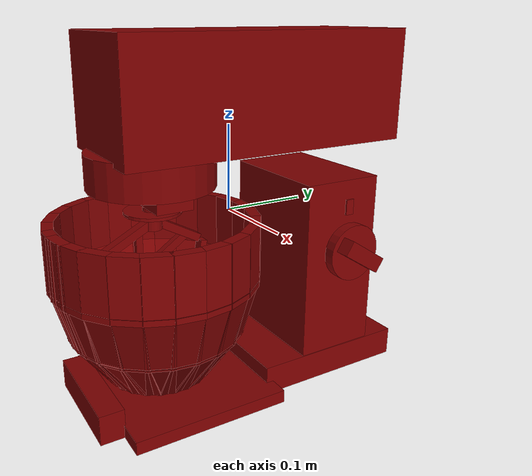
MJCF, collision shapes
<?xml version='1.0' encoding='UTF-8'?>
<mujoco model="model">
  <compiler angle="radian"/>
  <asset>
    <mesh file="visuals/Blender001.obj" name="Blender001_vis"/>
    <mesh file="visuals/Body001.obj" name="Body001_vis"/>
    <mesh file="visuals/Button001.obj" name="Button001_vis"/>
    <mesh file="visuals/Container001.obj" name="Container001_vis"/>
    <mesh file="visuals/Knob001.obj" name="Knob001_vis"/>
    <mesh file="visuals/Lid001.obj" name="Lid001_vis"/>
    <texture file="visuals/T_BC001.png" name="Body001_material" type="2d"/>
    <material name="Body001_material" rgba="1 1 1 1.0" texture="Body001_material" shininess="0.2512328028678894" specular="0.3103448502657381"/>
    <texture file="visuals/T_BC001.png" name="Button001_material" type="2d"/>
    <material name="Button001_material" rgba="1 1 1 1.0" texture="Button001_material" shininess="0.2512328028678894" specular="0.3103448502657381"/>
    <texture file="visuals/T_BC001.png" name="Container001_material" type="2d"/>
    <material name="Container001_material" rgba="1 1 1 1.0" texture="Container001_material" shininess="0.2512328028678894" specular="0.3103448502657381"/>
    <texture file="visuals/T_BC001.png" name="Knob001_material" type="2d"/>
    <material name="Knob001_material" rgba="1 1 1 1.0" texture="Knob001_material" shininess="0.2512328028678894" specular="0.3103448502657381"/>
    <texture file="visuals/T_BC001.png" name="Lid001_material" type="2d"/>
    <material name="Lid001_material" rgba="1 1 1 1.0" texture="Lid001_material" shininess="0.2512328028678894" specular="0.3103448502657381"/>
    <texture file="visuals/T_BC001.png" name="Blender001_material" type="2d"/>
    <material name="Blender001_material" rgba="1 1 1 1.0" texture="Blender001_material" shininess="0.2512328028678894" specular="0.3103448502657381"/>
  </asset>
  <default>
    <default class="visual">
      <geom conaffinity="0" contype="0" group="1" type="mesh"/>
    </default>
    <default class="collision">
      <geom group="0" rgba="0.5 0 0 0.5"/>
    </default>
    <default class="spawn">
      <geom group="0" rgba="1 1 1 0.5" contype="0" conaffinity="0"/>
      <site group="0" rgba="1 1 1 0.5"/>
    </default>
    <default class="region">
      <geom group="1" conaffinity="0" contype="0" rgba="0 1 0 0"/>
    </default>
  </default>
  <worldbody>
    <body>
      <body name="object">
        <geom mesh="Body001_vis" type="mesh" solimp="0.998 0.998 0.001" solref="0.001 1" density="100" friction="0.95 0.3 0.1" class="visual" material="Body001_material"/>
        <geom class="collision" type="box" pos="-0.0015134010463953018 0.11187341809272766 -0.08460196852684021" size="0.04973790794610977 0.07485727220773697 0.12052256613969803" quat="0.7071068286895752 0.0 0.0 0.7071067690849304"/>
        <geom class="collision" type="box" pos="-4.5945451887519084e-09 0.10511094331741333 -0.1957404911518097" size="0.09662679582834244 0.07478203624486923 0.017333393916487694" quat="0.7071068286895752 0.0 0.0 0.7071067690849304"/>
        <geom class="collision" type="box" pos="3.2677749395304545e-09 -0.07475799322128296 -0.2053949534893036" size="0.09226132929325104 0.0979515016078949 0.007678885478526354" quat="0.7071068286895752 0.0 0.0 0.7071067690849304"/>
        <geom class="collision" type="box" pos="7.855673445078537e-09 -0.17971685528755188 -0.1957404613494873" size="0.014186805114150047 0.06465299427509308 0.017333386465907097" quat="0.7071068286895752 0.0 0.0 0.7071067690849304"/>
        <body name="Button001">
          <joint axis="-1.0 0.0 0.0" pos="0.07972491532564163 0.11553697288036346 0.005397915840148926" limited="true" name="Button001_joint" range="0.0 0.001" type="slide" damping="1" frictionloss="1" armature=".01" stiffness="0.05"/>
          <geom mesh="Button001_vis" type="mesh" solimp="0.998 0.998 0.001" solref="0.001 1" density="100" friction="0.95 0.3 0.1" class="visual" material="Button001_material"/>
          <geom class="collision" type="box" pos="0.0796266421675682 0.11564087122678757 0.005433990620076656" size="0.005102482158690691 0.0012516024289652705 0.009104336611926556" quat="0.7071068286895752 0.0 0.0 0.7071067690849304"/>
        </body>
        <body name="Container001">
          <joint axis="0.0 0.0 1.0" pos="-7.291173442780519e-09 -0.09765620529651642 -0.10301198810338974" limited="true" name="Container001_joint" range="0.0 0.05" type="slide" damping="1" frictionloss="1" armature=".01" stiffness="0.05"/>
          <geom mesh="Container001_vis" type="mesh" solimp="0.998 0.998 0.001" solref="0.001 1" density="100" friction="0.95 0.3 0.1" class="visual" material="Container001_material"/>
          <geom class="collision" type="cylinder" pos="-0.0002636372810229659 -0.09704343229532242 -0.17977194488048553" size="0.05244426429271698 0.005382004659622908" quat="0.7071068286895752 0.0 0.0 0.7071067690849304"/>
          <geom class="collision" type="box" pos="-0.0002648494264576584 -0.20975354313850403 -0.03036089614033699" size="0.0062544080428779125 0.016279293224215508 0.035840801894664764" quat="0.7071068286895752 0.0 0.0 0.7071067690849304"/>
          <geom class="collision" type="box" pos="-0.00026362139033153653 -0.20032256841659546 -0.09177970141172409" size="0.006193332374095917 0.016120601445436478 0.03584080561995506" quat="0.0975811630487442 -0.7003412842750549 -0.7003412842750549 -0.09758107364177704"/>
          <geom class="collision" type="box" pos="-0.0002636302961036563 -0.17221559584140778 -0.1491832137107849" size="0.006193332374095917 0.016120603308081627 0.035840798169374466" quat="0.21898114681243896 -0.6723445653915405 -0.6723446846008301 -0.21898102760314941"/>
          <geom class="collision" type="box" pos="-0.028881153091788292 -0.20605501532554626 -0.03036089986562729" size="0.006254295818507671 0.01627928949892521 0.03584079444408417" quat="5.978750294843849e-08 0.7919095754623413 0.6106383800506592 4.6101927608788174e-08"/>
          <geom class="collision" type="box" pos="-0.02652144990861416 -0.19692887365818024 -0.0917796939611435" size="0.006193328648805618 0.01612059772014618 0.035840801894664764" quat="0.08426856249570847 -0.7843326330184937 -0.6047959327697754 -0.10928399115800858"/>
          <geom class="collision" type="box" pos="-0.019375531002879143 -0.169745534658432 -0.1491832286119461" size="0.006193332374095917 0.016120603308081627 0.03584080561995506" quat="0.18910624086856842 -0.7529783844947815 -0.5806187391281128 -0.24524326622486115"/>
          <geom class="collision" type="box" pos="-0.056338753551244736 -0.19479139149188995 -0.03036087565124035" size="0.006254302803426981 0.016279293224215508 0.03584080934524536" quat="6.534361318699666e-08 0.8655023574829102 0.5009048581123352 3.781725510521028e-08"/>
          <geom class="collision" type="box" pos="-0.051716096699237823 -0.18659353256225586 -0.09177970886230469" size="0.006193336099386215 0.016120601445436478 0.03584081679582596" quat="0.069125235080719 -0.8572213649749756 -0.496112197637558 -0.11943983286619186"/>
          <geom class="collision" type="box" pos="-0.037713564932346344 -0.16222289204597473 -0.1491832137107849" size="0.006193332374095917 0.016120601445436478 0.03584080561995506" quat="0.1551232486963272 -0.8229533433914185 -0.47627967596054077 -0.2680339813232422"/>
          <geom class="collision" type="box" pos="-0.08001255989074707 -0.176627516746521 -0.03036089986562729" size="0.0062542990781366825 0.016279293224215508 0.035840801894664764" quat="6.977980859801391e-08 0.9242616295814514 0.3817597031593323 2.882205585308384e-08"/>
          <geom class="collision" type="box" pos="-0.07343883067369461 -0.1699267029762268 -0.0917796939611435" size="0.006193336099386215 0.016120605170726776 0.03584080561995506" quat="0.052683163434267044 -0.9154183864593506 -0.3781071603298187 -0.12754866480827332"/>
          <geom class="collision" type="box" pos="-0.05352454259991646 -0.15009182691574097 -0.1491832137107849" size="0.006193328648805618 0.016120603308081627 0.03584080561995506" quat="0.11822569370269775 -0.8788238763809204 -0.36299195885658264 -0.2862308621406555"/>
          <geom class="collision" type="box" pos="-0.0976824164390564 -0.15357688069343567 -0.03036087565124035" size="0.006254303734749556 0.016279296949505806 0.03584080934524536" quat="7.291522763352987e-08 0.9657914638519287 0.2593200206756592 1.957811690544986e-08"/>
          <geom class="collision" type="box" pos="-0.08965232223272324 -0.14877580106258392 -0.0917796939611435" size="0.006193336099386215 0.016120605170726776 0.035840801894664764" quat="0.03578639775514603 -0.9565508961677551 -0.25683894753456116 -0.13327977061271667"/>
          <geom class="collision" type="box" pos="-0.06532563269138336 -0.1346970796585083 -0.1491832435131073" size="0.006193332374095917 0.016120607033371925 0.03584080561995506" quat="-0.08030775934457779 0.918312132358551 0.246571347117424 0.2990921437740326"/>
          <geom class="collision" type="box" pos="-0.10919365286827087 -0.12554003298282623 -0.030360877513885498" size="0.0062542990781366825 0.01627929136157036 0.03584080934524536" quat="7.488726083693109e-08 0.9919118285179138 0.12692886590957642 9.582859838985769e-09"/>
          <geom class="collision" type="box" pos="-0.10021483153104782 -0.12304962426424026 -0.0917796865105629" size="0.006193328648805618 0.01612059585750103 0.03584079071879387" quat="0.01751633919775486 -0.982421338558197 -0.12571442127227783 -0.13688448071479797"/>
          <geom class="collision" type="box" pos="-0.07301361113786697 -0.11597216129302979 -0.1491832286119461" size="0.006193332374095917 0.01612059585750103 0.035840798169374466" quat="-0.039308059960603714 0.9431483149528503 0.12068898230791092 0.3071812391281128"/>
          <geom class="collision" type="box" pos="-0.11281777173280716 -0.09642375260591507 -0.03036087192595005" size="0.0163219403475523 0.00636614253744483 0.03584136813879013" quat="0.7071068286895752 0.0 0.0 0.7071067690849304"/>
          <geom class="collision" type="box" pos="-0.10354029387235641 -0.09633303433656693 -0.0917796939611435" size="0.006193332374095917 0.016120601445436478 0.03584081679582596" quat="-0.0004745778569485992 -0.9904263019561768 0.00340657657943666 -0.13799984753131866"/>
          <geom class="collision" type="box" pos="-0.07543407380580902 -0.09652635455131531 -0.1491832733154297" size="0.006193332374095917 0.016120603308081627 0.03584080561995506" quat="-0.0010650918120518327 -0.950833261013031 0.0032703832257539034 -0.3096841275691986"/>
          <geom class="collision" type="box" pos="-0.1084333211183548 -0.06607984751462936 -0.030360903590917587" size="0.006254306994378567 0.01627928391098976 0.03584079444408417" quat="6.421896614483558e-08 -0.9902077317237854 0.1396017223596573 -8.529823958269844e-08"/>
          <geom class="collision" type="box" pos="-0.09951724112033844 -0.06848996132612228 -0.0917796939611435" size="0.006193332374095917 0.016120607033371925 0.03584081679582596" quat="-0.019265055656433105 -0.9807335734367371 0.13826602697372437 -0.13664932548999786"/>
          <geom class="collision" type="box" pos="-0.07250580936670303 -0.07626064121723175 -0.1491832286119461" size="0.006193332374095917 0.016120603308081627 0.03584080934524536" quat="-0.04323263838887215 -0.9415280222892761 0.13273873925209045 -0.30665352940559387"/>
          <geom class="collision" type="box" pos="-0.09623046219348907 -0.038381680846214294 -0.030360892415046692" size="0.0062542990781366825 0.01627928763628006 0.03584079444408417" quat="9.315822069311253e-08 -0.9624464511871338 0.27147161960601807 5.216714882294582e-08"/>
          <geom class="collision" type="box" pos="-0.0883200615644455 -0.0430745966732502 -0.09177970886230469" size="0.006193332374095917 0.016120605170726776 0.03584079444408417" quat="-0.037463173270225525 -0.9532379508018494 0.2688741087913513 -0.13281826674938202"/>
          <geom class="collision" type="box" pos="-0.06435592472553253 -0.05776195600628853 -0.1491832435131073" size="0.006193336099386215 0.01612059958279133 0.03584080561995506" quat="-0.08407089859247208 -0.9151315093040466 0.25812575221061707 -0.2980562448501587"/>
          <geom class="collision" type="box" pos="-0.07724934816360474 -0.015087449923157692 -0.030360879376530647" size="0.0062542990781366825 0.016279295086860657 0.03584080561995506" quat="3.926532698983465e-08 -0.9175969958305359 0.39751195907592773 -9.928796629310455e-08"/>
          <geom class="collision" type="box" pos="-0.07090330868959427 -0.021700184792280197 -0.0917796939611435" size="0.00619333703070879 0.01612059772014618 0.03584079444408417" quat="0.05485696718096733 0.9088175892829895 -0.3937085270881653 0.12662896513938904"/>
          <geom class="collision" type="box" pos="-0.051679059863090515 -0.04220451042056084 -0.1491832286119461" size="0.006193332374095917 0.016120605170726776 0.03584080934524536" quat="-0.12310383468866348 -0.8724868893623352 0.37796980142593384 -0.28416699171066284"/>
          <geom class="collision" type="box" pos="-0.0525081492960453 0.002498492132872343 -0.0303608700633049" size="0.006254307460039854 0.016279296949505806 0.03584081679582596" quat="1.0367579506009861e-07 -0.8556153774261475 0.5176121592521667 2.5518534840784923e-08"/>
          <geom class="collision" type="box" pos="-0.048201218247413635 -0.005563614424318075 -0.0917796939611435" size="0.006193338893353939 0.016120605170726776 0.03584080934524536" quat="0.07143081724643707 0.8474289774894714 -0.5126597285270691 0.11807534098625183"/>
          <geom class="collision" type="box" pos="-0.03515521436929703 -0.030459435656666756 -0.1491832435131073" size="0.006193332374095917 0.016120601445436478 0.035840801894664764" quat="0.16029717028141022 0.8135523200035095 -0.49216586351394653 0.2649720311164856"/>
          <geom class="collision" type="box" pos="-0.023989543318748474 0.01282880362123251 -0.0303608700633049" size="0.006254300009459257 0.016279296949505806 0.03584082052111626" quat="1.1316271475436679e-08 -0.7780683040618896 0.6281797289848328 -1.0616876977564971e-07"/>
          <geom class="collision" type="box" pos="-0.022032996639609337 0.0039152768440544605 -0.0917796865105629" size="0.006193331442773342 0.01612059958279133 0.03584081307053566" quat="0.0866890698671341 0.7706241607666016 -0.622169017791748 0.10737390071153641"/>
          <geom class="collision" type="box" pos="-0.016108576208353043 -0.023560140281915665 -0.1491832435131073" size="0.006193336099386215 0.016120607033371925 0.03584081679582596" quat="0.19453826546669006 0.7398179173469543 -0.5972973108291626 0.24095690250396729"/>
          <geom class="collision" type="box" pos="0.0065854075364768505 0.015148879028856754 -0.030360884964466095" size="0.006254296284168959 0.01627929136157036 0.03584080561995506" quat="8.493894654293399e-08 0.6852511763572693 -0.7283068299293518 1.989968723137281e-08"/>
          <geom class="collision" type="box" pos="0.0060220747254788876 0.006044226232916117 -0.09177970141172409" size="0.006193335168063641 0.016120610758662224 0.03584080934524536" quat="0.10050668567419052 0.6786948442459106 -0.7213384509086609 0.09456508606672287"/>
          <geom class="collision" type="box" pos="0.0043114423751831055 -0.022010639309883118 -0.1491832435131073" size="0.006193339824676514 0.01612059958279133 0.03584080561995506" quat="0.22554633021354675 0.6515636444091797 -0.6925022602081299 0.21221283078193665"/>
          <geom class="collision" type="box" pos="0.03708355128765106 0.008980346843600273 -0.030360866338014603" size="0.006254300009459257 0.016279295086860657 0.03584081679582596" quat="8.687420205433227e-08 0.578004002571106 -0.8160339593887329 7.968111503942055e-09"/>
          <geom class="collision" type="box" pos="0.03400667756795883 0.00038406639941968024 -0.0917796939611435" size="0.006193336099386215 0.016120601445436478 0.03584080934524536" quat="0.11261319369077682 0.5724737048149109 -0.8082262277603149 0.0797649621963501"/>
          <geom class="collision" type="box" pos="0.02468016743659973 -0.02613040618598461 -0.1491832137107849" size="0.006193338893353939 0.01612059958279133 0.03584079444408417" quat="0.2527141273021698 0.549588680267334 -0.7759168744087219 0.1789996176958084"/>
          <geom class="collision" type="box" pos="0.06416179984807968 -0.004905277397483587 -0.030360877513885498" size="0.006254295352846384 0.01627929136157036 0.03584080561995506" quat="8.715392851854631e-08 0.46238550543785095 -0.8866789937019348 -3.8488563447458546e-09"/>
          <geom class="collision" type="box" pos="0.058853231370449066 -0.012357153929769993 -0.0917796939611435" size="0.006193332374095917 0.016120607033371925 0.03584081307053566" quat="0.12236227095127106 0.4579613208770752 -0.8781954646110535 0.06380952894687653"/>
          <geom class="collision" type="box" pos="0.04276483878493309 -0.03540413826704025 -0.1491832137107849" size="0.006193332374095917 0.016120601445436478 0.03584079071879387" quat="0.27459195256233215 0.4396542012691498 -0.8430888652801514 0.14319434762001038"/>
          <geom class="collision" type="box" pos="0.08636056631803513 -0.025331586599349976 -0.030360879376530647" size="0.006254298612475395 0.016279296949505806 0.03584080561995506" quat="8.585204369637722e-08 0.3393934369087219 -0.9406445026397705 -1.5493384353248985e-08"/>
          <geom class="collision" type="box" pos="0.0792224258184433 -0.031100019812583923 -0.0917796939611435" size="0.006193335168063641 0.016120605170726776 0.035840798169374466" quat="0.1298094242811203 0.3361463248729706 -0.9316444993019104 0.04683653637766838"/>
          <geom class="collision" type="box" pos="0.05759066715836525 -0.049046263098716736 -0.1491832435131073" size="0.00619332492351532 0.016120603308081627 0.03584081307053566" quat="0.2913043797016144 0.3227080702781677 -0.8944015502929688 0.10510528832674026"/>
          <geom class="collision" type="box" pos="0.102748803794384 -0.05184471979737282 -0.03036087192595005" size="0.006254302803426981 0.016279293224215508 0.03584080561995506" quat="6.488117065828192e-08 -0.20588092505931854 0.9785770773887634 5.831854821281013e-08"/>
          <geom class="collision" type="box" pos="0.09426003694534302 -0.05542804300785065 -0.09177970886230469" size="0.006193332839757204 0.016120601445436478 0.03584079444408417" quat="0.13504426181316376 0.2039114385843277 -0.9692140817642212 0.028411807492375374"/>
          <geom class="collision" type="box" pos="0.06853587925434113 -0.06675352901220322 -0.1491832137107849" size="0.006193336099386215 0.01612059958279133 0.03584079444408417" quat="0.30305150151252747 0.19575956463813782 -0.9304691553115845 0.0637584701180458"/>
          <geom class="collision" type="box" pos="0.11099646985530853 -0.0801786407828331 -0.030360901728272438" size="0.0062542990781366825 0.01627929136157036 0.03584079444408417" quat="7.85948728321273e-08 0.07582249492406845 -0.9971213340759277 -3.786109559200668e-08"/>
          <geom class="collision" type="box" pos="0.1018279567360878 -0.08142677694559097 -0.0917796939611435" size="0.006193332374095917 0.016120601445436478 0.03584081307053566" quat="0.13760340213775635 0.07509716600179672 -0.9875810146331787 0.010463525541126728"/>
          <geom class="collision" type="box" pos="0.07404423505067825 -0.08567684143781662 -0.1491832435131073" size="0.006193328648805618 0.016120601445436478 0.03584081307053566" quat="0.3087943196296692 0.07209473848342896 -0.948101818561554 0.023481128737330437"/>
          <geom class="collision" type="box" pos="0.1114780455827713 -0.11069876700639725 -0.0303608700633049" size="0.006254300009459257 0.016279293224215508 0.03584080934524536" quat="-4.8168516286750673e-08 -0.060082416981458664 -0.9981934428215027 -7.27352187368524e-08"/>
          <geom class="collision" type="box" pos="0.10226980596780777 -0.10943154990673065 -0.09177970141172409" size="0.006193332374095917 0.01612059772014618 0.03584081679582596" quat="0.13775135576725006 -0.0595075823366642 -0.9886428117752075 -0.008291357196867466"/>
          <geom class="collision" type="box" pos="0.07436578720808029 -0.10606027394533157 -0.1491832137107849" size="0.006193332374095917 0.016120601445436478 0.03584079444408417" quat="0.30912643671035767 -0.057129137217998505 -0.9491211175918579 -0.01860680617392063"/>
          <geom class="collision" type="box" pos="0.10410652309656143 -0.13933296501636505 -0.030360877513885498" size="0.006254300009459257 0.01627929136157036 0.03584080561995506" quat="-5.730482754984223e-08 -0.1906726062297821 -0.9816536903381348 -6.577823086217904e-08"/>
          <geom class="collision" type="box" pos="0.09550582617521286 -0.1357058584690094 -0.09177970141172409" size="0.006193331442773342 0.016120605170726776 0.03584079444408417" quat="0.13546887040138245 -0.18884827196598053 -0.972261369228363 -0.026312870904803276"/>
          <geom class="collision" type="box" pos="0.06944259256124496 -0.12518411874771118 -0.1491832286119461" size="0.006193332839757204 0.01612059958279133 0.035840801894664764" quat="0.3040043115615845 -0.18129906058311462 -0.9333944916725159 -0.05904863029718399"/>
          <geom class="collision" type="box" pos="0.08942314982414246 -0.16520392894744873 -0.03036089986562729" size="0.006254303734749556 0.01627928763628006 0.03584079444408417" quat="-1.7368961380270775e-08 0.3187215328216553 0.947848379611969 8.549233143639867e-08"/>
          <geom class="collision" type="box" pos="0.08203262090682983 -0.15944461524486542 -0.09177970141172409" size="0.006193336099386215 0.01612059772014618 0.03584078326821327" quat="0.13080362975597382 -0.3156718313694 -0.9387795925140381 -0.043983642011880875"/>
          <geom class="collision" type="box" pos="0.05963601917028427 -0.14246244728565216 -0.1491832286119461" size="0.006193332374095917 0.016120607033371925 0.03584079444408417" quat="0.2935352623462677 -0.30305320024490356 -0.9012510180473328 -0.09870362281799316"/>
          <geom class="collision" type="box" pos="0.06748391687870026 -0.18708042800426483 -0.030360868200659752" size="0.006254301406443119 0.016279296949505806 0.03584081679582596" quat="-5.437220451653957e-09 0.4461423456668854 0.8949620127677917 8.706926024615314e-08"/>
          <geom class="collision" type="box" pos="0.061901502311229706 -0.17951813340187073 -0.0917796939611435" size="0.00619333703070879 0.01612059958279133 0.03584079071879387" quat="0.12350531667470932 -0.441873699426651 -0.8863991498947144 -0.0615679994225502"/>
          <geom class="collision" type="box" pos="0.044983506202697754 -0.15707305073738098 -0.1491832286119461" size="0.006193336099386215 0.016120601445436478 0.035840801894664764" quat="0.277157187461853 -0.4242098927497864 -0.8509644865989685 -0.13816411793231964"/>
          <geom class="collision" type="box" pos="0.04128929227590561 -0.20180203020572662 -0.03036087565124035" size="0.006254295352846384 0.016279295086860657 0.03584080934524536" quat="-7.856728245769773e-08 -0.561610221862793 -0.8274019360542297 -3.791834402022687e-08"/>
          <geom class="collision" type="box" pos="0.0378657802939415 -0.19302639365196228 -0.09177970886230469" size="0.00619333703070879 0.016120601445436478 0.03584079444408417" quat="0.1141819879412651 -0.5562366247177124 -0.819485604763031 -0.07750260829925537"/>
          <geom class="collision" type="box" pos="0.02748897112905979 -0.16690512001514435 -0.1491832286119461" size="0.006193332374095917 0.016120607033371925 0.035840801894664764" quat="0.2562347650527954 -0.5340011715888977 -0.7867256999015808 -0.17392289638519287"/>
          <geom class="collision" type="box" pos="0.018807558342814445 -0.20812585949897766 -0.030360877513885498" size="0.0062542990781366825 0.016279296949505806 0.03584080934524536" quat="1.522733761305517e-08 0.6444187164306641 0.7646728157997131 8.589961453253636e-08"/>
          <geom class="collision" type="box" pos="0.01723688654601574 -0.1988290548324585 -0.0917796939611435" size="0.006193336099386215 0.016120601445436478 0.035840801894664764" quat="0.10552548617124557 -0.6382530331611633 -0.7573564648628235 -0.08893023431301117"/>
          <geom class="collision" type="box" pos="0.012474139221012592 -0.17112857103347778 -0.1491832286119461" size="0.006193332374095917 0.01612059958279133 0.035840801894664764" quat="0.23680831491947174 -0.612738847732544 -0.7270802855491638 -0.1995674967765808"/>
        </body>
        <body name="Knob001">
          <joint axis="-1.0 0.0 0.0" pos="0.0897178128361702 0.11556453257799149 -0.04743035137653351" limited="true" name="Knob001_joint" range="0.0 4.886921905584122" type="hinge" damping="0.05" armature="0.001"/>
          <geom mesh="Knob001_vis" type="mesh" solimp="0.998 0.998 0.001" solref="0.001 1" density="100" friction="0.95 0.3 0.1" class="visual" material="Knob001_material"/>
          <geom class="collision" type="cylinder" pos="0.087321937084198 0.11580229550600052 -0.047281328588724136" size="0.03395312651991844 0.006316273007541895" quat="0.49999991059303284 -0.5000000596046448 -0.5 0.5"/>
          <geom class="collision" type="box" pos="0.10118024796247482 0.11716651916503906 -0.047443587332963943" size="0.009327352046966553 0.009327351115643978 0.02793775498867035" quat="0.8767880797386169 0.48087701201438904 0.0 0.0"/>
        </body>
        <body name="Lid001">
          <joint axis="-1.0 0.0 0.0" pos="0.0017365445382893085 0.15934434533119202 0.04211323335766792" limited="true" name="Lid001_joint" range="0.0 1.5707963267948966" type="hinge" damping="1" frictionloss="1" armature=".01" stiffness="0.05"/>
          <geom mesh="Lid001_vis" type="mesh" solimp="0.998 0.998 0.001" solref="0.001 1" density="100" friction="0.95 0.3 0.1" class="visual" material="Lid001_material"/>
          <geom class="collision" type="box" pos="0.021103635430336 -0.09746744483709335 0.03738540783524513" size="0.02072635106742382 0.03817243129014969 0.010256567969918251" quat="0.7071068286895752 0.0 0.0 0.7071067690849304"/>
          <geom class="collision" type="cylinder" pos="4.741682047004758e-10 -0.09757839888334274 0.06143031269311905" size="0.07119353860616684 0.02013145200908184" quat="0.7071068286895752 0.0 0.0 0.7071067690849304"/>
          <geom class="collision" type="box" pos="-7.91932852628463e-10 0.01811733841896057 0.14036110043525696" size="0.17258843779563904 0.071190744638443 0.06351257860660553" quat="0.7071068286895752 0.0 0.0 0.7071067690849304"/>
          <body name="Blender001">
            <joint axis="0.0 0.0 1.0" pos="4.080689905094914e-05 -0.09765615314245224 -0.04985892027616501" limited="false" name="Blender001_joint" range="0 360" type="hinge" damping="1" frictionloss="1" armature=".01" stiffness="0.05"/>
            <geom mesh="Blender001_vis" type="mesh" solimp="0.998 0.998 0.001" solref="0.001 1" density="100" friction="0.95 0.3 0.1" class="visual" material="Blender001_material"/>
            <geom class="collision" type="cylinder" pos="6.205390832292323e-07 -0.09725647419691086 0.0015298870857805014" size="0.0104545122012496 0.009128493256866932" quat="0.7071068286895752 0.0 0.0 0.7071067690849304"/>
            <geom class="collision" type="cylinder" pos="6.186162408994278e-07 -0.09725647419691086 0.012713752686977386" size="0.03260716423392296 0.0017177023692056537" quat="0.7071068286895752 0.0 0.0 0.7071067690849304"/>
            <geom class="collision" type="cylinder" pos="6.203916882441263e-07 -0.09725647419691086 0.017755188047885895" size="0.01130321342498064 0.0034065672662109137" quat="0.7071068286895752 0.0 0.0 0.7071067690849304"/>
            <geom class="collision" type="box" pos="6.200624511620845e-07 -0.0676201805472374 -0.01332837250083685" size="0.004646332003176212 0.0060021053068339825 0.02840612828731537" quat="0.6072803139686584 0.36223000288009644 -0.36223000288009644 0.6072803735733032"/>
            <geom class="collision" type="box" pos="6.228624442883302e-07 -0.13116009533405304 -0.01539152953773737" size="0.004656828939914703 0.0060021053068339825 0.03258392959833145" quat="0.6048757433891296 -0.3662313222885132 0.36623141169548035 0.6048756241798401"/>
            <geom class="collision" type="box" pos="6.235529781406512e-07 -0.15247398614883423 -0.06600524485111237" size="0.003986801486462355 0.0060021053068339825 0.028788497671484947" quat="0.13282410800457 -0.6945197582244873 0.6945198774337769 0.13282407820224762"/>
            <geom class="collision" type="box" pos="6.227240305634041e-07 -0.1330491006374359 -0.10503806173801422" size="0.004567150492221117 0.0060021053068339825 0.02539699524641037" quat="0.3337087035179138 -0.6234087347984314 0.6234087944030762 0.3337087333202362"/>
            <geom class="collision" type="box" pos="6.209929779288359e-07 -0.09153635054826736 -0.11847202479839325" size="0.004838597495108843 0.0060021053068339825 0.023462580516934395" quat="0.5353359580039978 -0.4619690775871277 0.4619688391685486 0.5353361368179321"/>
            <geom class="collision" type="box" pos="6.193805575094302e-07 -0.052401941269636154 -0.09708734601736069" size="0.004339531529694796 0.0060021053068339825 0.02683386020362377" quat="0.6578837037086487 -0.2592081129550934 0.2592080533504486 0.6578840017318726"/>
            <geom class="collision" type="box" pos="6.189887358232227e-07 -0.04192548990249634 -0.05969950556755066" size="0.0038700057193636894 0.0060021053068339825 0.029372569173574448" quat="0.704130232334137 -0.06481224298477173 0.06481224298477173 0.704130232334137"/>
            <geom class="collision" type="box" pos="6.221661124072853e-07 -0.1157459169626236 -0.06369626522064209" size="0.0038313863333314657 0.0038313863333314657 0.055502232164144516" quat="0.7071068286895752 0.0 0.0 0.7071067690849304"/>
            <geom class="collision" type="box" pos="6.209247089827841e-07 -0.08734533935785294 -0.08755544573068619" size="0.00456263218075037 0.003831393551081419 0.035983607172966" quat="0.6242405772209167 0.33215004205703735 -0.3321499526500702 0.6242406964302063"/>
            <geom class="collision" type="box" pos="6.209247089827841e-07 -0.08734533935785294 -0.03957698121666908" size="0.004552845377475023 0.003831393551081419 0.03607538342475891" quat="0.3287926912307739 0.6260153651237488 -0.6260155439376831 0.32879263162612915"/>
          </body>
        </body>
        <geom class="region" name="reg_main" type="box" pos="1.862645149230957e-09 -7.450580596923828e-09 0.0" size="0.11893510073423386 0.21659132838249207 0.21307390928268433"/>
      </body>
    </body>
  </worldbody>
  <actuator>
    <motor name="Button001_joint_actuator" joint="Button001_joint" gear="0.5"/>
    <motor name="Container001_joint_actuator" joint="Container001_joint" gear="100"/>
    <motor name="Knob001_joint_actuator" joint="Knob001_joint" gear="10"/>
    <motor name="Lid001_joint_actuator" joint="Lid001_joint" gear="30"/>
    <motor name="Blender001_joint_actuator" joint="Blender001_joint" gear="10"/>
  </actuator>
</mujoco>
